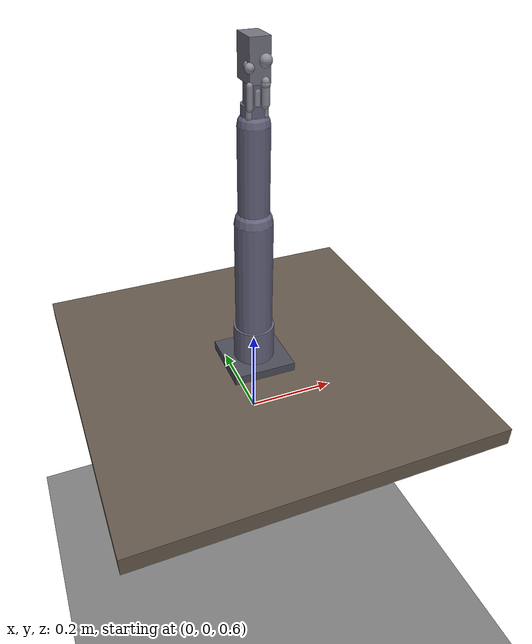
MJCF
<?xml version="1.0"?>
<!--
6轴通用协作机械臂 + 灵巧手末端 + 桌面场景

模拟 UR5 / Franka Panda 风格的 6-DOF 串联机械臂。
相比 3轴滑台：
  - 6个旋转关节 (J1-J6)，工作空间更大
  - 可从任意角度接近物体
  - 符合学术界的标准配置

自由度: 6 (机械臂) + 10 (灵巧手手指) = 16 DOF
-->
<mujoco model="ylyw_6axis_arm_hand">
  <compiler angle="radian" meshdir="../meshes"/>

  <option timestep="0.002" gravity="0 0 -9.81">
    <flag contact="enable"/>
  </option>

  <asset>
    <material name="base" rgba="0.3 0.3 0.35 1"/>
    <material name="link" rgba="0.4 0.4 0.5 1"/>
    <material name="joint" rgba="0.6 0.6 0.7 1"/>
    <material name="palm" rgba="0.45 0.45 0.50 1"/>
    <material name="finger" rgba="0.55 0.55 0.60 1"/>
    <material name="object" rgba="0.8 0.3 0.2 1"/>
    <material name="table" rgba="0.4 0.35 0.3 1"/>
  </asset>

  <default>
    <geom type="capsule" condim="4" friction="1.5 0.01 0.001"/>
    <joint damping="10.0" armature="0.01" frictionloss="0.05"/>
    <position kp="50" kv="30"/>
  </default>

  <worldbody>
    <light pos="0 0 5" dir="0 0 -1" diffuse="0.8 0.8 0.8"/>
    <light pos="2 2 4" dir="-1 -1 -2" diffuse="0.8 0.8 0.8"/>
    <light pos="-2 2 3" dir="1 -1 -1" diffuse="0.3 0.3 0.3"/>

    <!-- 桌面和地面 -->
    <geom name="floor" type="plane" size="2 2 0.01" pos="0 0 0"/>
    <geom name="table" type="box" size="0.4 0.4 0.02" pos="0 0 0.72" material="table"/>

    <!-- 俯视摄像头 -->
    <camera name="topview" pos="0 0 1.8" xyaxes="1 0 0 0 1 0" mode="fixed"/>
    <!-- 侧视摄像头（从右前方45°向下看桌面中心） -->
    <camera name="sideview" pos="0.7 0 0.9" xyaxes="0 -1 0 0.707 0 0.707" mode="fixed"/>
    <!-- 第一人称摄像头（挂载在palm上，面向物体方向） -->
    <camera name="egocentric" pos="0 0.06 0.05" zaxis="0 0 -1" mode="fixed"/>

    <!-- 6轴协作机械臂 (UR5风格)                                     -->
    <body name="base" pos="0 0 0.72">
      <geom name="base_geom" type="box" size="0.07 0.07 0.04" material="base"/>

      <!-- J1: 腰部旋转 (绕Z轴) -->
      <body name="link1" pos="0 0 0.04">
        <joint name="j1" type="hinge" axis="0 0 1" range="-3.14 3.14" damping="2.0"/>
        <geom name="link1_geom" type="cylinder" size="0.045 0.08" material="link"/>
        <geom name="j1_indicator" type="sphere" size="0.025" material="joint"/>

        <!-- J2: 肩部俯仰 (绕Y轴) -->
        <body name="link2" pos="0 0 0.08">
          <joint name="j2" type="hinge" axis="0 1 0" range="-2.5 2.5" damping="2.0"/>
          <geom name="link2_geom" type="capsule" fromto="0 0 0 0 0 0.25" size="0.04" material="link"/>

          <!-- J3: 肘部俯仰 (绕Y轴) -->
          <body name="link3" pos="0 0 0.25">
            <joint name="j3" type="hinge" axis="0 1 0" range="-2.5 2.5" damping="2.0"/>
            <geom name="link3_geom" type="capsule" fromto="0 0 0 0 0 0.20" size="0.032" material="link"/>

            <!-- J4: 腕部旋转1 (绕Z轴) -->
            <body name="link4" pos="0 0 0.20">
              <joint name="j4" type="hinge" axis="0 0 1" range="-3.14 3.14" damping="1.0"/>
              <geom name="link4_geom" type="cylinder" size="0.025 0.04" material="link"/>

              <!-- J5: 腕部俯仰 (绕Y轴) -->
              <body name="link5" pos="0 0 0.04">
                <joint name="j5" type="hinge" axis="0 1 0" range="-2.0 2.0" damping="1.0"/>
                <geom name="link5_geom" type="capsule" fromto="0 0 0 0 0 0.10" size="0.02" material="link"/>

                <!-- J6: 腕部旋转2 (绕Z轴) — 法兰盘 -->
                <body name="link6" pos="0 0 0.10">
                  <joint name="j6" type="hinge" axis="0 0 1" range="-3.14 3.14" damping="1.0"/>
                  <geom name="flange" type="cylinder" size="0.02 0.015" material="joint"/>

                  <!-- 灵巧手末端 (与 hand_scene_3axis.xml 相同)                  -->
                  <body name="palm" pos="0 0 -0.02">
                    <geom name="palm_geom" type="box" size="0.02 0.03 0.04" material="palm"/>

                    <!-- 拇指 -->
                    <body name="thumb_proximal" pos="0.01 -0.03 0.0">
                      <geom name="thumb_base" type="sphere" size="0.012" material="finger"/>
                      <joint name="THJ1" type="hinge" axis="0 1 0" range="-0.3 0.5"/>
                      <body name="thumb_distal" pos="0.0 0.0 -0.035">
                        <geom name="thumb_link" type="capsule" fromto="0 0 0 0 0 -0.04" size="0.008" material="finger"/>
                        <joint name="THJ2" type="hinge" axis="1 0 0" range="-0.3 0.6"/>
                        <geom name="thumb_tip" type="sphere" size="0.009" pos="0 0 -0.005" material="finger"/>
                      </body>
                    </body>

                    <!-- 食指 -->
                    <body name="index_proximal" pos="0.015 -0.015 -0.01">
                      <geom name="index_base" type="sphere" size="0.010" material="finger"/>
                      <joint name="FFJ1" type="hinge" axis="1 0 0" range="-0.3 1.5"/>
                      <body name="index_distal" pos="0.0 0.0 -0.04">
                        <geom name="index_link" type="capsule" fromto="0 0 0 0 0 -0.05" size="0.007" material="finger"/>
                        <joint name="FFJ2" type="hinge" axis="1 0 0" range="-0.3 1.5"/>
                        <geom name="index_tip" type="sphere" size="0.007" pos="0 0 -0.005" material="finger"/>
                      </body>
                    </body>

                    <!-- 中指 -->
                    <body name="middle_proximal" pos="0.0 -0.015 -0.01">
                      <geom name="middle_base" type="sphere" size="0.010" material="finger"/>
                      <joint name="MFJ1" type="hinge" axis="1 0 0" range="-0.3 1.5"/>
                      <body name="middle_distal" pos="0.0 0.0 -0.045">
                        <geom name="middle_link" type="capsule" fromto="0 0 0 0 0 -0.055" size="0.007" material="finger"/>
                        <joint name="MFJ2" type="hinge" axis="1 0 0" range="-0.3 1.5"/>
                        <geom name="middle_tip" type="sphere" size="0.007" pos="0 0 -0.005" material="finger"/>
                      </body>
                    </body>

                    <!-- 无名指 -->
                    <body name="ring_proximal" pos="-0.015 -0.015 -0.01">
                      <geom name="ring_base" type="sphere" size="0.010" material="finger"/>
                      <joint name="RFJ1" type="hinge" axis="1 0 0" range="-0.3 1.5"/>
                      <body name="ring_distal" pos="0.0 0.0 -0.04">
                        <geom name="ring_link" type="capsule" fromto="0 0 0 0 0 -0.05" size="0.007" material="finger"/>
                        <joint name="RFJ2" type="hinge" axis="1 0 0" range="-0.3 1.5"/>
                        <geom name="ring_tip" type="sphere" size="0.007" pos="0 0 -0.005" material="finger"/>
                      </body>
                    </body>

                    <!-- 小指 -->
                    <body name="pinky_proximal" pos="-0.02 -0.03 -0.01">
                      <geom name="pinky_base" type="sphere" size="0.009" material="finger"/>
                      <joint name="LFJ1" type="hinge" axis="1 0 0" range="-0.3 1.5"/>
                      <body name="pinky_distal" pos="0.0 0.0 -0.03">
                        <geom name="pinky_link" type="capsule" fromto="0 0 0 0 0 -0.04" size="0.006" material="finger"/>
                        <joint name="LFJ2" type="hinge" axis="1 0 0" range="-0.3 1.5"/>
                        <geom name="pinky_tip" type="sphere" size="0.006" pos="0 0 -0.004" material="finger"/>
                      </body>
                    </body>

                  </body><!-- palm -->
                </body><!-- link6 -->
              </body><!-- link5 -->
            </body><!-- link4 -->
          </body><!-- link3 -->
        </body><!-- link2 -->
      </body><!-- link1 -->
    </body><!-- base -->
    <!-- 抓取物体 (freejoint, 由代码控制位置) -->
    <body name="object" pos="0 0 0.76">
      <freejoint name="obj_free"/>
      <geom name="obj_geom" type="sphere" size="0.028" mass="0.03" material="object"/>
    </body>
  </worldbody>

  <actuator>
    <!-- 6轴臂 position控制 -->
    <position name="j1" joint="j1" kp="200" kv="20"/>
    <position name="j2" joint="j2" kp="200" kv="20"/>
    <position name="j3" joint="j3" kp="200" kv="20"/>
    <position name="j4" joint="j4" kp="100" kv="10"/>
    <position name="j5" joint="j5" kp="100" kv="10"/>
    <position name="j6" joint="j6" kp="200" kv="10"/>
    <!-- 灵巧手 position控制 -->
    <position name="THJ1" joint="THJ1" kp="200" kv="10"/>
    <position name="THJ2" joint="THJ2" kp="200" kv="10"/>
    <position name="FFJ1" joint="FFJ1" kp="200" kv="10"/>
    <position name="FFJ2" joint="FFJ2" kp="200" kv="10"/>
    <position name="MFJ1" joint="MFJ1" kp="200" kv="10"/>
    <position name="MFJ2" joint="MFJ2" kp="200" kv="10"/>
    <position name="RFJ1" joint="RFJ1" kp="200" kv="10"/>
    <position name="RFJ2" joint="RFJ2" kp="200" kv="10"/>
    <position name="LFJ1" joint="LFJ1" kp="200" kv="10"/>
    <position name="LFJ2" joint="LFJ2" kp="200" kv="10"/>
  </actuator>

</mujoco>
